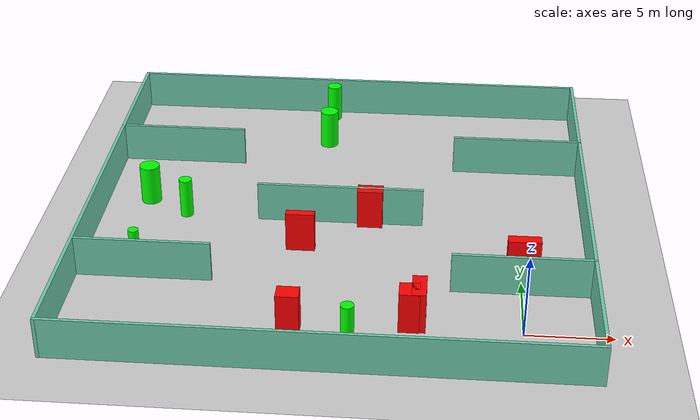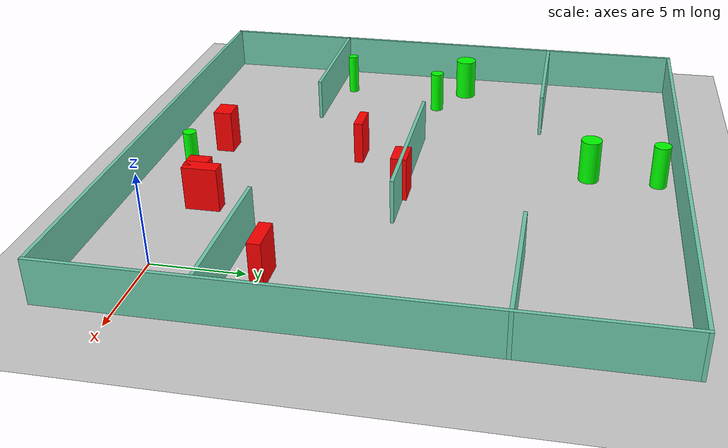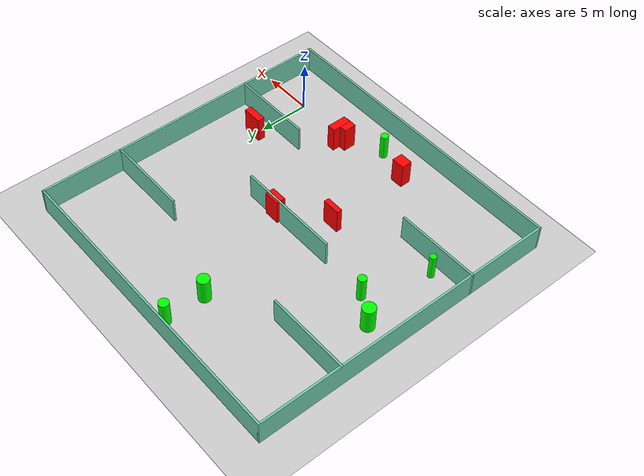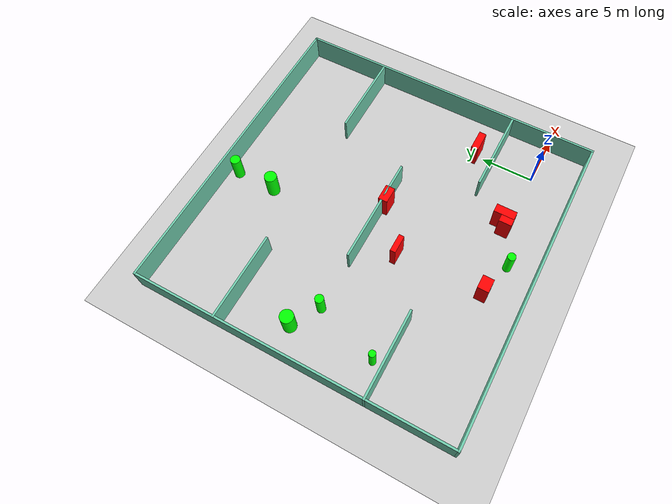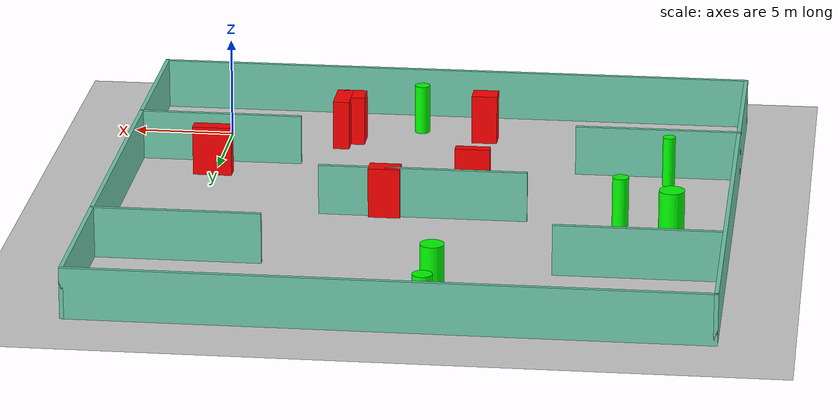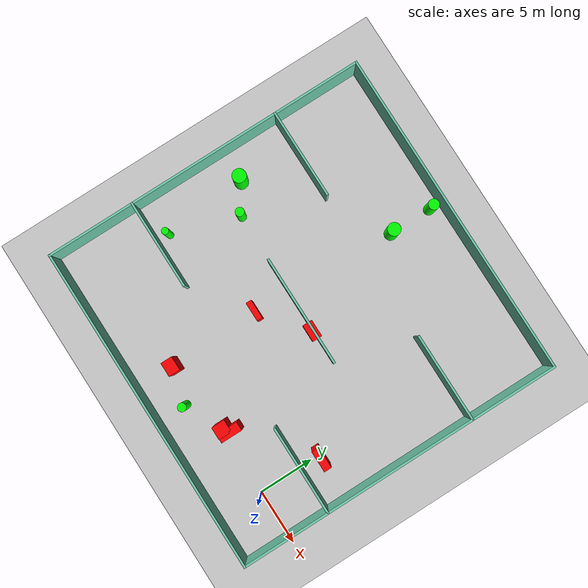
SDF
<sdf version="1.7">
 <world name="default">
  <light name="sun" type="directional">
   <pose>0 0 10 0 -0 0</pose>
   <diffuse>0.8 0.8 0.8 1</diffuse>
   <specular>0.2 0.2 0.2 1</specular>
   <attenuation>
    <range>1000</range>
    <constant>0.9</constant>
    <linear>0.01</linear>
    <quadratic>0.001</quadratic>
   </attenuation>
   <direction>-0.5 0.1 -0.9</direction>
   <spot><inner_angle>0</inner_angle><outer_angle>0</outer_angle><falloff>0</falloff></spot>
  </light>
  <model name="ground_plane">
   <static>1</static>
   <link name="link">
    <collision name="collision">
     <geometry><plane><normal>0 0 1</normal><size>100 100</size></plane></geometry>
     <surface>
      <contact><collide_bitmask>65535</collide_bitmask></contact>
      <friction><ode><mu>100</mu><mu2>50</mu2></ode></friction>
     </surface>
    </collision>
    <visual name="visual">
     <cast_shadows>0</cast_shadows>
     <geometry><plane><normal>0 0 1</normal><size>100 100</size></plane></geometry>
     <material>
      <script><uri>file://media/materials/scripts/gazebo.material</uri><name>Gazebo/Grey</name></script>
     </material>
    </visual>
   </link>
  </model>
  <gravity>0 0 -9.8</gravity>
  <magnetic_field>6e-06 2.3e-05 -4.2e-05</magnetic_field>
  <atmosphere type="adiabatic"/>
  <physics type="ode">
   <max_step_size>0.001</max_step_size>
   <real_time_factor>1</real_time_factor>
   <real_time_update_rate>1000</real_time_update_rate>
  </physics>
  <scene><ambient>0.4 0.4 0.4 1</ambient><background>0.7 0.7 0.7 1</background><shadows>1</shadows></scene>
  <spherical_coordinates>
   <surface_model>EARTH_WGS84</surface_model>
   <latitude_deg>0</latitude_deg>
   <longitude_deg>0</longitude_deg>
   <elevation>0</elevation>
   <heading_deg>0</heading_deg>
  </spherical_coordinates>
  <model name="my_base_walls">
   <link name="Wall_10">
    <collision name="Wall_10_Collision">
     <geometry><box><size>8.2 0.2 2.5</size></box></geometry>
     <pose>0 0 1.25 0 -0 0</pose>
    </collision>
    <visual name="Wall_10_Visual">
     <pose>0 0 1.25 0 -0 0</pose>
     <geometry><box><size>8.2 0.2 2.5</size></box></geometry>
     <material>
      <script><uri>file://media/materials/scripts/gazebo.material</uri><name>Gazebo/Grey</name></script>
      <ambient>0.435294 0.796078 0.67451 1</ambient>
     </material>
     <meta><layer>0</layer></meta>
    </visual>
    <pose>-11 -7 0 0 -0 0</pose>
   </link>
   <link name="Wall_12">
    <collision name="Wall_12_Collision">
     <geometry><box><size>8.2 0.2 2.5</size></box></geometry>
     <pose>0 0 1.25 0 -0 0</pose>
    </collision>
    <visual name="Wall_12_Visual">
     <pose>0 0 1.25 0 -0 0</pose>
     <geometry><box><size>8.2 0.2 2.5</size></box></geometry>
     <material>
      <script><uri>file://media/materials/scripts/gazebo.material</uri><name>Gazebo/Grey</name></script>
      <ambient>0.435294 0.796078 0.67451 1</ambient>
     </material>
     <meta><layer>0</layer></meta>
    </visual>
    <pose>-11 7 0 0 -0 0</pose>
   </link>
   <link name="Wall_14">
    <collision name="Wall_14_Collision">
     <geometry><box><size>8.2 0.2 2.5</size></box></geometry>
     <pose>0 0 1.25 0 -0 0</pose>
    </collision>
    <visual name="Wall_14_Visual">
     <pose>0 0 1.25 0 -0 0</pose>
     <geometry><box><size>8.2 0.2 2.5</size></box></geometry>
     <material>
      <script><uri>file://media/materials/scripts/gazebo.material</uri><name>Gazebo/Grey</name></script>
      <ambient>0.435294 0.796078 0.67451 1</ambient>
     </material>
     <meta><layer>0</layer></meta>
    </visual>
    <pose>11 7 0 0 -0 3.14159</pose>
   </link>
   <link name="Wall_16">
    <collision name="Wall_16_Collision">
     <geometry><box><size>10.2 0.2 2.5</size></box></geometry>
     <pose>0 0 1.25 0 -0 0</pose>
    </collision>
    <visual name="Wall_16_Visual">
     <pose>0 0 1.25 0 -0 0</pose>
     <geometry><box><size>10.2 0.2 2.5</size></box></geometry>
     <material>
      <script><uri>file://media/materials/scripts/gazebo.material</uri><name>Gazebo/Grey</name></script>
      <ambient>0.435294 0.796078 0.67451 1</ambient>
     </material>
     <meta><layer>0</layer></meta>
    </visual>
    <pose>0 0 0 0 -0 3.14159</pose>
   </link>
   <link name="Wall_2">
    <collision name="Wall_2_Collision">
     <geometry><box><size>30.2 0.2 2.5</size></box></geometry>
     <pose>0 0 1.25 0 -0 0</pose>
    </collision>
    <visual name="Wall_2_Visual">
     <pose>0 0 1.25 0 -0 0</pose>
     <geometry><box><size>30.2 0.2 2.5</size></box></geometry>
     <material>
      <script><uri>file://media/materials/scripts/gazebo.material</uri><name>Gazebo/Grey</name></script>
      <ambient>0.435294 0.796078 0.67451 1</ambient>
     </material>
     <meta><layer>0</layer></meta>
    </visual>
    <pose>0 -15 0 0 -0 3.14159</pose>
   </link>
   <link name="Wall_3">
    <collision name="Wall_3_Collision">
     <geometry><box><size>30.2 0.2 2.5</size></box></geometry>
     <pose>0 0 1.25 0 -0 0</pose>
    </collision>
    <visual name="Wall_3_Visual">
     <pose>0 0 1.25 0 -0 0</pose>
     <geometry><box><size>30.2 0.2 2.5</size></box></geometry>
     <material>
      <script><uri>file://media/materials/scripts/gazebo.material</uri><name>Gazebo/Grey</name></script>
      <ambient>0.435294 0.796078 0.67451 1</ambient>
     </material>
     <meta><layer>0</layer></meta>
    </visual>
    <pose>-15 0 0 0 -0 1.5708</pose>
   </link>
   <link name="Wall_4">
    <collision name="Wall_4_Collision">
     <geometry><box><size>30.2 0.2 2.5</size></box></geometry>
     <pose>0 0 1.25 0 -0 0</pose>
    </collision>
    <visual name="Wall_4_Visual">
     <pose>0 0 1.25 0 -0 0</pose>
     <geometry><box><size>30.2 0.2 2.5</size></box></geometry>
     <material>
      <script><uri>file://media/materials/scripts/gazebo.material</uri><name>Gazebo/Grey</name></script>
      <ambient>0.435294 0.796078 0.67451 1</ambient>
     </material>
     <meta><layer>0</layer></meta>
    </visual>
    <pose>0 15 0 0 -0 0</pose>
   </link>
   <link name="Wall_6">
    <collision name="Wall_6_Collision">
     <geometry><box><size>30.2 0.2 2.5</size></box></geometry>
     <pose>0 0 1.25 0 -0 0</pose>
    </collision>
    <visual name="Wall_6_Visual">
     <pose>0 0 1.25 0 -0 0</pose>
     <geometry><box><size>30.2 0.2 2.5</size></box></geometry>
     <material>
      <script><uri>file://media/materials/scripts/gazebo.material</uri><name>Gazebo/Grey</name></script>
      <ambient>0.435294 0.796078 0.67451 1</ambient>
     </material>
     <meta><layer>0</layer></meta>
    </visual>
    <pose>15 0 0 0 -0 1.5708</pose>
   </link>
   <link name="Wall_8">
    <collision name="Wall_8_Collision">
     <geometry><box><size>8.2 0.2 2.5</size></box></geometry>
     <pose>0 0 1.25 0 -0 0</pose>
    </collision>
    <visual name="Wall_8_Visual">
     <pose>0 0 1.25 0 -0 0</pose>
     <geometry><box><size>8.2 0.2 2.5</size></box></geometry>
     <material>
      <script><uri>file://media/materials/scripts/gazebo.material</uri><name>Gazebo/Grey</name></script>
      <ambient>0.435294 0.796078 0.67451 1</ambient>
     </material>
     <meta><layer>0</layer></meta>
    </visual>
    <pose>11 -7 0 0 -0 3.14159</pose>
   </link>
   <static>1</static>
   <pose>-11 11 0 0 -0 0</pose>
  </model>
  <model name="cylinder1">
   <static>1</static>
   <link name="link">
    <inertial>
     <mass>1</mass>
     <inertia><ixx>0.5</ixx><ixy>0</ixy><ixz>0</ixz><iyy>0.5</iyy><iyz>0</iyz><izz>1</izz></inertia>
    </inertial>
    <collision name="collision">
     <geometry><cylinder><radius>0.4761458939333999</radius><length>2.5</length></cylinder></geometry>
    </collision>
    <visual name="visual">
     <geometry><cylinder><radius>0.4761458939333999</radius><length>2.5</length></cylinder></geometry>
     <material>
      <ambient>0 1 0 1</ambient>
      <diffuse>0 1 0 1</diffuse>
      <specular>0.1 0.1 0.1 1</specular>
      <emissive>0 0 0 0</emissive>
     </material>
    </visual>
   </link>
   <pose>-12.528933304399207 24.974459439227218 1.25 0 0 0</pose>
  </model>
  <model name="cylinder2">
   <static>1</static>
   <link name="link">
    <inertial>
     <mass>1</mass>
     <inertia><ixx>0.5</ixx><ixy>0</ixy><ixz>0</ixz><iyy>0.5</iyy><iyz>0</iyz><izz>1</izz></inertia>
    </inertial>
    <collision name="collision">
     <geometry><cylinder><radius>0.30879782003758693</radius><length>2.5</length></cylinder></geometry>
    </collision>
    <visual name="visual">
     <geometry><cylinder><radius>0.30879782003758693</radius><length>2.5</length></cylinder></geometry>
     <material>
      <ambient>0 1 0 1</ambient>
      <diffuse>0 1 0 1</diffuse>
      <specular>0.1 0.1 0.1 1</specular>
      <emissive>0 0 0 0</emissive>
     </material>
    </visual>
   </link>
   <pose>-22.6129940350826 5.096468292083184 1.25 0 0 0</pose>
  </model>
  <model name="cylinder3">
   <static>1</static>
   <link name="link">
    <inertial>
     <mass>1</mass>
     <inertia><ixx>0.5</ixx><ixy>0</ixy><ixz>0</ixz><iyy>0.5</iyy><iyz>0</iyz><izz>1</izz></inertia>
    </inertial>
    <collision name="collision">
     <geometry><cylinder><radius>0.6216500713017276</radius><length>2.5</length></cylinder></geometry>
    </collision>
    <visual name="visual">
     <geometry><cylinder><radius>0.6216500713017276</radius><length>2.5</length></cylinder></geometry>
     <material>
      <ambient>0 1 0 1</ambient>
      <diffuse>0 1 0 1</diffuse>
      <specular>0.1 0.1 0.1 1</specular>
      <emissive>0 0 0 0</emissive>
     </material>
    </visual>
   </link>
   <pose>-23.194714486721427 12.699210758312901 1.25 0 0 0</pose>
  </model>
  <model name="cylinder4">
   <static>1</static>
   <link name="link">
    <inertial>
     <mass>1</mass>
     <inertia><ixx>0.5</ixx><ixy>0</ixy><ixz>0</ixz><iyy>0.5</iyy><iyz>0</iyz><izz>1</izz></inertia>
    </inertial>
    <collision name="collision">
     <geometry><cylinder><radius>0.39751865423979327</radius><length>2.5</length></cylinder></geometry>
    </collision>
    <visual name="visual">
     <geometry><cylinder><radius>0.39751865423979327</radius><length>2.5</length></cylinder></geometry>
     <material>
      <ambient>0 1 0 1</ambient>
      <diffuse>0 1 0 1</diffuse>
      <specular>0.1 0.1 0.1 1</specular>
      <emissive>0 0 0 0</emissive>
     </material>
    </visual>
   </link>
   <pose>-20.629647495166424 11.12992401340341 1.25 0 0 0</pose>
  </model>
  <model name="cylinder5">
   <static>1</static>
   <link name="link">
    <inertial>
     <mass>1</mass>
     <inertia><ixx>0.5</ixx><ixy>0</ixy><ixz>0</ixz><iyy>0.5</iyy><iyz>0</iyz><izz>1</izz></inertia>
    </inertial>
    <collision name="collision">
     <geometry><cylinder><radius>0.5823711168246504</radius><length>2.5</length></cylinder></geometry>
    </collision>
    <visual name="visual">
     <geometry><cylinder><radius>0.5823711168246504</radius><length>2.5</length></cylinder></geometry>
     <material>
      <ambient>0 1 0 1</ambient>
      <diffuse>0 1 0 1</diffuse>
      <specular>0.1 0.1 0.1 1</specular>
      <emissive>0 0 0 0</emissive>
     </material>
    </visual>
   </link>
   <pose>-12.555382625675797 21.09356683847355 1.25 0 0 0</pose>
  </model>
  <model name="cylinder6">
   <static>1</static>
   <link name="link">
    <inertial>
     <mass>1</mass>
     <inertia><ixx>0.5</ixx><ixy>0</ixy><ixz>0</ixz><iyy>0.5</iyy><iyz>0</iyz><izz>1</izz></inertia>
    </inertial>
    <collision name="collision">
     <geometry><cylinder><radius>0.3780146280348069</radius><length>2.5</length></cylinder></geometry>
    </collision>
    <visual name="visual">
     <geometry><cylinder><radius>0.3780146280348069</radius><length>2.5</length></cylinder></geometry>
     <material>
      <ambient>0 1 0 1</ambient>
      <diffuse>0 1 0 1</diffuse>
      <specular>0.1 0.1 0.1 1</specular>
      <emissive>0 0 0 0</emissive>
     </material>
    </visual>
   </link>
   <pose>-9.612958638379565 -1.4339095439404006 1.25 0 0 0</pose>
  </model>
  <model name="box1">
   <static>1</static>
   <link name="link">
    <inertial>
     <mass>1</mass>
     <inertia><ixx>0.083</ixx><ixy>0</ixy><ixz>0</ixz><iyy>0.083</iyy><iyz>0</iyz><izz>0.083</izz></inertia>
    </inertial>
    <collision name="collision">
     <geometry><box><size>1.1612991018490633 1.2134894567012042 2.5</size></box></geometry>
    </collision>
    <visual name="visual">
     <geometry><box><size>1.1612991018490633 1.2134894567012042 2.5</size></box></geometry>
     <material>
      <ambient>1 0 0 1</ambient>
      <diffuse>1 0 0 1</diffuse>
      <specular>0.1 0.1 0.1 1</specular>
      <emissive>0 0 0 0</emissive>
     </material>
    </visual>
    <sensor name="my_contact" type="contact">
     <contact><collision>box_collision</collision><topic>__default_topic__</topic></contact>
    </sensor>
   </link>
   <pose>-6.328968022242821 0.31874504833534534 1.25 0 0 0</pose>
  </model>
  <model name="box2">
   <static>1</static>
   <link name="link">
    <inertial>
     <mass>1</mass>
     <inertia><ixx>0.083</ixx><ixy>0</ixy><ixz>0</ixz><iyy>0.083</iyy><iyz>0</iyz><izz>0.083</izz></inertia>
    </inertial>
    <collision name="collision">
     <geometry><box><size>1.7298422906419835 0.5086224305376266 2.5</size></box></geometry>
    </collision>
    <visual name="visual">
     <geometry><box><size>1.7298422906419835 0.5086224305376266 2.5</size></box></geometry>
     <material>
      <ambient>1 0 0 1</ambient>
      <diffuse>1 0 0 1</diffuse>
      <specular>0.1 0.1 0.1 1</specular>
      <emissive>0 0 0 0</emissive>
     </material>
    </visual>
    <sensor name="my_contact" type="contact">
     <contact><collision>box_collision</collision><topic>__default_topic__</topic></contact>
    </sensor>
   </link>
   <pose>-13.118853874978946 7.768297655844469 1.25 0 0 0</pose>
  </model>
  <model name="box3">
   <static>1</static>
   <link name="link">
    <inertial>
     <mass>1</mass>
     <inertia><ixx>0.083</ixx><ixy>0</ixy><ixz>0</ixz><iyy>0.083</iyy><iyz>0</iyz><izz>0.083</izz></inertia>
    </inertial>
    <collision name="collision">
     <geometry><box><size>1.9338861893840447 0.6887497684585789 2.5</size></box></geometry>
    </collision>
    <visual name="visual">
     <geometry><box><size>1.9338861893840447 0.6887497684585789 2.5</size></box></geometry>
     <material>
      <ambient>1 0 0 1</ambient>
      <diffuse>1 0 0 1</diffuse>
      <specular>0.1 0.1 0.1 1</specular>
      <emissive>0 0 0 0</emissive>
     </material>
    </visual>
    <sensor name="my_contact" type="contact">
     <contact><collision>box_collision</collision><topic>__default_topic__</topic></contact>
    </sensor>
   </link>
   <pose>0.09510674189550627 5.878778555677384 1.25 0 0 0</pose>
  </model>
  <model name="box4">
   <static>1</static>
   <link name="link">
    <inertial>
     <mass>1</mass>
     <inertia><ixx>0.083</ixx><ixy>0</ixy><ixz>0</ixz><iyy>0.083</iyy><iyz>0</iyz><izz>0.083</izz></inertia>
    </inertial>
    <collision name="collision">
     <geometry><box><size>1.5567784919502492 0.883535009230886 2.5</size></box></geometry>
    </collision>
    <visual name="visual">
     <geometry><box><size>1.5567784919502492 0.883535009230886 2.5</size></box></geometry>
     <material>
      <ambient>1 0 0 1</ambient>
      <diffuse>1 0 0 1</diffuse>
      <specular>0.1 0.1 0.1 1</specular>
      <emissive>0 0 0 0</emissive>
     </material>
    </visual>
    <sensor name="my_contact" type="contact">
     <contact><collision>box_collision</collision><topic>__default_topic__</topic></contact>
    </sensor>
   </link>
   <pose>-9.136191248310212 10.88474347586044 1.25 0 0 0</pose>
  </model>
  <model name="box5">
   <static>1</static>
   <link name="link">
    <inertial>
     <mass>1</mass>
     <inertia><ixx>0.083</ixx><ixy>0</ixy><ixz>0</ixz><iyy>0.083</iyy><iyz>0</iyz><izz>0.083</izz></inertia>
    </inertial>
    <collision name="collision">
     <geometry><box><size>0.8153297297263398 1.9360058020434499 2.5</size></box></geometry>
    </collision>
    <visual name="visual">
     <geometry><box><size>0.8153297297263398 1.9360058020434499 2.5</size></box></geometry>
     <material>
      <ambient>1 0 0 1</ambient>
      <diffuse>1 0 0 1</diffuse>
      <specular>0.1 0.1 0.1 1</specular>
      <emissive>0 0 0 0</emissive>
     </material>
    </visual>
    <sensor name="my_contact" type="contact">
     <contact><collision>box_collision</collision><topic>__default_topic__</topic></contact>
    </sensor>
   </link>
   <pose>-5.808422032795283 0.7148132065611144 1.25 0 0 0</pose>
  </model>
  <model name="box6">
   <static>1</static>
   <link name="link">
    <inertial>
     <mass>1</mass>
     <inertia><ixx>0.083</ixx><ixy>0</ixy><ixz>0</ixz><iyy>0.083</iyy><iyz>0</iyz><izz>0.083</izz></inertia>
    </inertial>
    <collision name="collision">
     <geometry><box><size>1.2825811507947948 1.0406937609652958 2.5</size></box></geometry>
    </collision>
    <visual name="visual">
     <geometry><box><size>1.2825811507947948 1.0406937609652958 2.5</size></box></geometry>
     <material>
      <ambient>1 0 0 1</ambient>
      <diffuse>1 0 0 1</diffuse>
      <specular>0.1 0.1 0.1 1</specular>
      <emissive>0 0 0 0</emissive>
     </material>
    </visual>
    <sensor name="my_contact" type="contact">
     <contact><collision>box_collision</collision><topic>__default_topic__</topic></contact>
    </sensor>
   </link>
   <pose>-12.930694787492165 -0.46648156595286894 1.25 0 0 0</pose>
  </model>
 </world>
</sdf>
